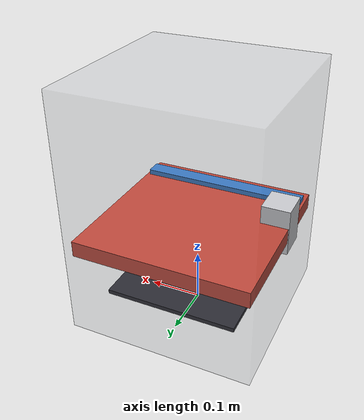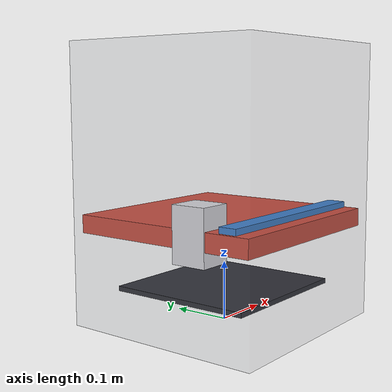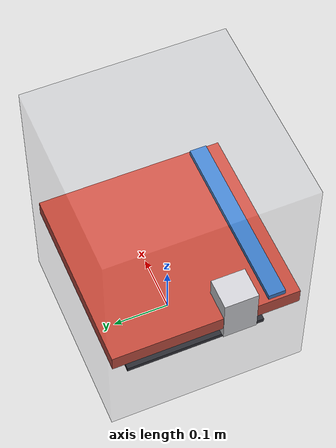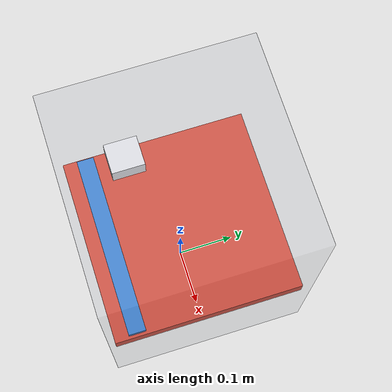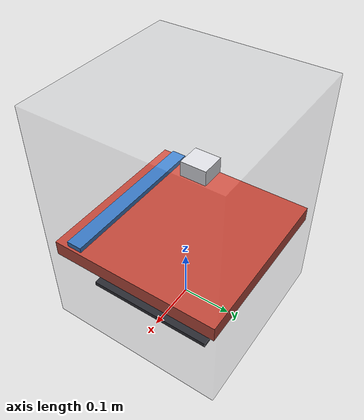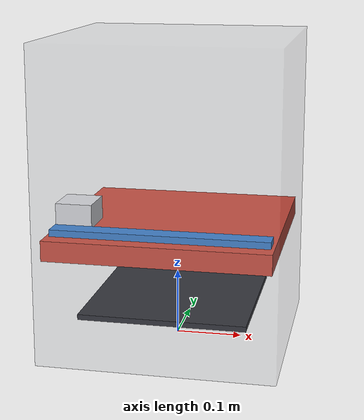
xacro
<?xml version="1.0"?>
<robot xmlns:xacro="http://www.ros.org/wiki/xacro" name="voron24">
<!--
  xacro:arg — 실행 시 넘겨주는 인자
  xacro:property — 받은 인자 값을 property, 변수로써 정의.
  xacro:include —  다른 Xacro 파일 import.
-->
  <xacro:arg name="use_meshes" default="false"/>
  <xacro:property name="use_meshes" value="$(arg use_meshes)"/>

  <xacro:include filename="$(find voron24_description)/urdf/voron24_params.xacro"/>
  <xacro:include filename="$(find voron24_description)/urdf/voron24_macros.xacro"/>

  <!-- ==========================================================
       base_link — 프레임 + 패널 + 베드 + 전장 + Z모터
       ========================================================== -->
<!--
  xacro:if & xacro:unless — 조건문
  xacro:property — 받은 인자 값을 property, 변수로써 정의.
  xacro:include —  다른 Xacro 파일 import.
-->
  <link name="base_link">
    <xacro:if value="${use_meshes}">
      <visual>
        <geometry>
          <mesh filename="${MESH_PKG}/visual/base_link.stl" scale="${MESH_SCALE}"/>
        </geometry>
        <material name="frame"><color rgba="0.62 0.64 0.67 1.0"/></material>
      </visual>
      <collision>
        <geometry>
          <mesh filename="${MESH_PKG}/collision/base_link.stl" scale="${MESH_SCALE}"/>
        </geometry>
      </collision>
    </xacro:if>
    <xacro:unless value="${use_meshes}">
      <!-- 프레임 외곽 (반투명) -->
      <visual>
        <origin xyz="0 0 ${frame_z/2}"/>
        <geometry><box size="${frame_x} ${frame_y} ${frame_z}"/></geometry>
        <material name="frame"><color rgba="0.60 0.62 0.65 0.20"/></material>
      </visual>
      <!-- 베드 — 고정! -->
      <visual>
        <origin xyz="0 0 ${bed_z - bed_plate_z/2}"/>
        <geometry><box size="${bed_plate_x} ${bed_plate_y} ${bed_plate_z}"/></geometry>
        <material name="bed"><color rgba="0.13 0.13 0.16 1.0"/></material>
      </visual>
      <collision>
        <origin xyz="0 0 ${frame_z/2}"/>
        <geometry><box size="${frame_x} ${frame_y} ${frame_z}"/></geometry>
      </collision>
    </xacro:unless>
    <xacro:box_inertia m="${m_base}" x="${frame_x}" y="${frame_y}" z="${frame_z}">
      <origin xyz="0 0 ${frame_z*0.3}"/>
    </xacro:box_inertia>
  </link>

  <!-- ==========================================================
       z_gantry — 갠트리 전체가 Z 로 승강 (플라잉 갠트리)
       ========================================================== -->
<!--
  xacro:link_geometry & xacro:box_inertia — voron24_description/urdf/voron24_macros.xacro에서 정의
-->
  <link name="z_gantry">
    <xacro:link_geometry name="z_gantry" use_meshes="${use_meshes}"
                         bx="${gantry_x}" by="${gantry_y}" bz="${gantry_z}"
                         color_name="voron_red" color_rgba="0.85 0.27 0.20 1.0"/>
    <xacro:box_inertia m="${m_gantry}" x="${gantry_x}" y="${gantry_y}" z="${gantry_z}">
      <origin xyz="0 0 0"/>
    </xacro:box_inertia>
  </link>

  <joint name="joint_z" type="prismatic">
    <parent link="base_link"/>
    <child  link="z_gantry"/>
    <origin xyz="${jz_x} ${jz_y} ${jz_z}" rpy="0 0 0"/>
    <axis xyz="0 0 1"/>
    <limit lower="0.0" upper="${stroke_z}" effort="${eff_z}" velocity="${vel_z}"/>
    <dynamics damping="${damp_z}" friction="${fric_z}"/>
  </joint>

  <!-- ==========================================================
       x_beam — X축 익스트루전이 Y 로 이동
       ========================================================== -->
  <link name="x_beam">
    <xacro:link_geometry name="x_beam" use_meshes="${use_meshes}"
                         bx="${beam_x}" by="${beam_y}" bz="${beam_z}"
                         color_name="voron_blue" color_rgba="0.20 0.50 0.85 1.0"/>
    <xacro:box_inertia m="${m_beam}" x="${beam_x}" y="${beam_y}" z="${beam_z}">
      <origin xyz="0 0 0"/>
    </xacro:box_inertia>
  </link>

  <joint name="joint_y" type="prismatic">
    <parent link="z_gantry"/>
    <child  link="x_beam"/>
    <origin xyz="${jy_x} ${jy_y} ${jy_z}" rpy="0 0 0"/>
    <axis xyz="0 1 0"/>
    <limit lower="0.0" upper="${stroke_y}" effort="${eff_xy}" velocity="${vel_xy}"/>
    <dynamics damping="${damp_xy}" friction="${fric_xy}"/>
  </joint>

  <!-- ==========================================================
       toolhead — Stealthburner + Clockwork2, X 로 이동
       ========================================================== -->
  <link name="toolhead">
    <xacro:link_geometry name="toolhead" use_meshes="${use_meshes}"
                         bx="${th_x}" by="${th_y}" bz="${th_z}"
                         ox="0" oy="0.010" oz="${-th_z/2 + 0.015}"
                         color_name="toolhead_white" color_rgba="0.92 0.92 0.94 1.0"/>
    <xacro:box_inertia m="${m_toolhead}" x="${th_x}" y="${th_y}" z="${th_z}">
      <origin xyz="0 0.010 ${-th_z/2 + 0.015}"/>
    </xacro:box_inertia>
  </link>

  <joint name="joint_x" type="prismatic">
    <parent link="x_beam"/>
    <child  link="toolhead"/>
    <origin xyz="${jx_x} ${jx_y} ${jx_z}" rpy="0 0 0"/>
    <axis xyz="1 0 0"/>
    <limit lower="0.0" upper="${stroke_x}" effort="${eff_xy}" velocity="${vel_xy}"/>
    <dynamics damping="${damp_xy}" friction="${fric_xy}"/>
  </joint>

  <link name="nozzle"/>
  <joint name="joint_nozzle" type="fixed">
    <parent link="toolhead"/>
    <child  link="nozzle"/>
    <origin xyz="${noz_x} ${noz_y} ${noz_z}" rpy="0 0 0"/>
  </joint>

  <link name="bed_origin"/>
  <joint name="joint_bed_origin" type="fixed">
    <parent link="base_link"/>
    <child  link="bed_origin"/>
    <origin xyz="${bed_x} ${bed_y} ${bed_z}" rpy="0 0 0"/>
  </joint>

</robot>

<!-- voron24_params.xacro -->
<robot xmlns:xacro="http://www.ros.org/wiki/xacro">

  <!-- ==========================================================
       실측 상태
       ========================================================== -->
  <xacro:property name="MEASURED" value="false"/>
  <xacro:property name="MEAS_DATE" value="TBD"/>
  <xacro:property name="MEAS_BY"   value="TBD"/>

  <!-- ==========================================================
       빌드 볼륨 / 스트로크  [m]
       ========================================================== -->
  <xacro:property name="stroke_x" value="0.250"/>
  <xacro:property name="stroke_y" value="0.250"/>
  <xacro:property name="stroke_z" value="0.250"/>

  <!-- ==========================================================
       조인트 origin  [m]  — base_link 원점 = 프레임 하단면 정중앙
       ========================================================== -->

  <xacro:property name="jz_x" value="0.0"/>
  <xacro:property name="jz_y" value="0.0"/>
  <xacro:property name="jz_z" value="0.1707"/>      <!-- CAD 씬 확정 영점 (2026-08-18) -->

  <!-- joint_y : z_gantry -> x_beam (prismatic, axis 0 1 0)
       joint_y=0 일 때 X빔이 최전방(베드 Y=0 라인).
       CAD 씬 확정 영점(2026-08-18)에서 계측. 기존 추정치와 거의 일치. -->
  <xacro:property name="jy_x" value="0.0"/>
  <xacro:property name="jy_y" value="-0.125"/>      <!-- CAD 씬 (2026-08-18) -->
  <xacro:property name="jy_z" value="0.010"/>       <!-- CAD 씬 (2026-08-18) -->

  <!-- joint_x : x_beam -> toolhead (prismatic, axis 1 0 0)
       joint_x=0 일 때 툴헤드가 최좌측(베드 X=0 라인).
       CAD 씬 확정 영점(2026-08-18)에서 계측. jx_x 는 툴헤드가 빔을 따라
       놓인 위치(이동축 방향), jx_y/jx_z 는 캐리지 장착 오프셋. -->
  <xacro:property name="jx_x" value="-0.139"/>      <!-- CAD 씬 (2026-08-18) -->
  <xacro:property name="jx_y" value="0.0565"/>     <!-- CAD 씬 (2026-08-18) -->
  <xacro:property name="jx_z" value="0.0254"/>     <!-- CAD 씬 (2026-08-18) -->

  <!-- nozzle : toolhead -> nozzle (fixed) — TCP
       CAD 씬 확정 영점(2026-08-18)에서 계측한 toolhead 링크 원점 → 노즐 TCP 오프셋. -->
  <xacro:property name="noz_x" value="0.0126"/>    <!-- CAD 씬 (2026-08-18) -->
  <xacro:property name="noz_y" value="-0.0184"/>   <!-- CAD 씬 (2026-08-18) -->
  <xacro:property name="noz_z" value="-0.0628"/>   <!-- CAD 씬 (2026-08-18) -->

  <!-- bed_origin : base_link -> bed_origin (fixed)
       G-code (0,0,0). 베드 상면의 좌전방 프린트 원점 코너. -->
  <xacro:property name="bed_x" value="-0.125"/>     <!-- (추정) -->
  <xacro:property name="bed_y" value="-0.125"/>     <!-- (추정) -->
  <xacro:property name="bed_z" value="0.0640"/>     <!-- (추정) -->

  <xacro:property name="m_base"     value="12.0"/>
  <xacro:property name="m_gantry"   value="2.2"/>
  <xacro:property name="m_beam"     value="0.9"/>
  <xacro:property name="m_toolhead" value="0.45"/>

  <xacro:property name="frame_x" value="0.350"/>
  <xacro:property name="frame_y" value="0.350"/>
  <xacro:property name="frame_z" value="0.465"/>

  <xacro:property name="bed_plate_x" value="0.250"/>
  <xacro:property name="bed_plate_y" value="0.250"/>
  <xacro:property name="bed_plate_z" value="0.008"/>

  <xacro:property name="gantry_x" value="0.330"/>
  <xacro:property name="gantry_y" value="0.330"/>
  <xacro:property name="gantry_z" value="0.030"/>

  <xacro:property name="beam_x" value="0.320"/>
  <xacro:property name="beam_y" value="0.030"/>
  <xacro:property name="beam_z" value="0.030"/>

  <xacro:property name="th_x" value="0.055"/>
  <xacro:property name="th_y" value="0.060"/>
  <xacro:property name="th_z" value="0.090"/>

  <!-- ==========================================================
       CoreXY 벨트 (모터 각도 시각화용, 기구학과 무관)
       ========================================================== -->
  <xacro:property name="belt_pitch"   value="0.002"/>   <!-- GT2 -->
  <xacro:property name="pulley_teeth" value="20"/>

  <!-- ==========================================================
       조인트 동역학 / 리밋
       ========================================================== -->
  <xacro:property name="vel_xy"    value="0.5"/>
  <xacro:property name="vel_z"     value="0.05"/>
  <xacro:property name="eff_xy"    value="50"/>
  <xacro:property name="eff_z"     value="200"/>
  <xacro:property name="damp_xy"   value="0.5"/>
  <xacro:property name="damp_z"    value="5.0"/>
  <xacro:property name="fric_xy"   value="0.2"/>
  <xacro:property name="fric_z"    value="2.0"/>

</robot>

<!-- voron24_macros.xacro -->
<!--
  voron24_macros.xacro
  ====================
  관성 계산 매크로 + mock 박스 / 실제 메시 전환 매크로.
  이 파일은 C(ROS2 담당)가 관리한다.
-->
<robot xmlns:xacro="http://www.ros.org/wiki/xacro">

  <xacro:property name="MESH_PKG" value="package://voron24_description/meshes"/>
  <!-- 메시는 mm 단위로 저장 (계약 §4). URDF 에서 m 로 축소. -->
  <xacro:property name="MESH_SCALE" value="0.001 0.001 0.001"/>

  <!-- 박스 근사 관성. 3D 프린터는 저속이라 이 정도로 충분하다. -->
  <xacro:macro name="box_inertia" params="m x y z *origin">
    <inertial>
      <xacro:insert_block name="origin"/>
      <mass value="${m}"/>
      <inertia ixx="${m*(y*y+z*z)/12.0}"
               iyy="${m*(x*x+z*z)/12.0}"
               izz="${m*(x*x+y*y)/12.0}"
               ixy="0" ixz="0" iyz="0"/>
    </inertial>
  </xacro:macro>

  <xacro:macro name="link_geometry" params="name use_meshes bx by bz ox:=0 oy:=0 oz:=0 color_name color_rgba">
    <xacro:if value="${use_meshes}">
      <visual>
        <origin xyz="0 0 0" rpy="0 0 0"/>
        <geometry>
          <mesh filename="${MESH_PKG}/visual/${name}.stl" scale="${MESH_SCALE}"/>
        </geometry>
        <material name="${color_name}"><color rgba="${color_rgba}"/></material>
      </visual>
      <collision>
        <origin xyz="0 0 0" rpy="0 0 0"/>
        <geometry>
          <mesh filename="${MESH_PKG}/collision/${name}.stl" scale="${MESH_SCALE}"/>
        </geometry>
      </collision>
    </xacro:if>
    <xacro:unless value="${use_meshes}">
      <visual>
        <origin xyz="${ox} ${oy} ${oz}" rpy="0 0 0"/>
        <geometry><box size="${bx} ${by} ${bz}"/></geometry>
        <material name="${color_name}"><color rgba="${color_rgba}"/></material>
      </visual>
      <collision>
        <origin xyz="${ox} ${oy} ${oz}" rpy="0 0 0"/>
        <geometry><box size="${bx} ${by} ${bz}"/></geometry>
      </collision>
    </xacro:unless>
  </xacro:macro>

</robot>
